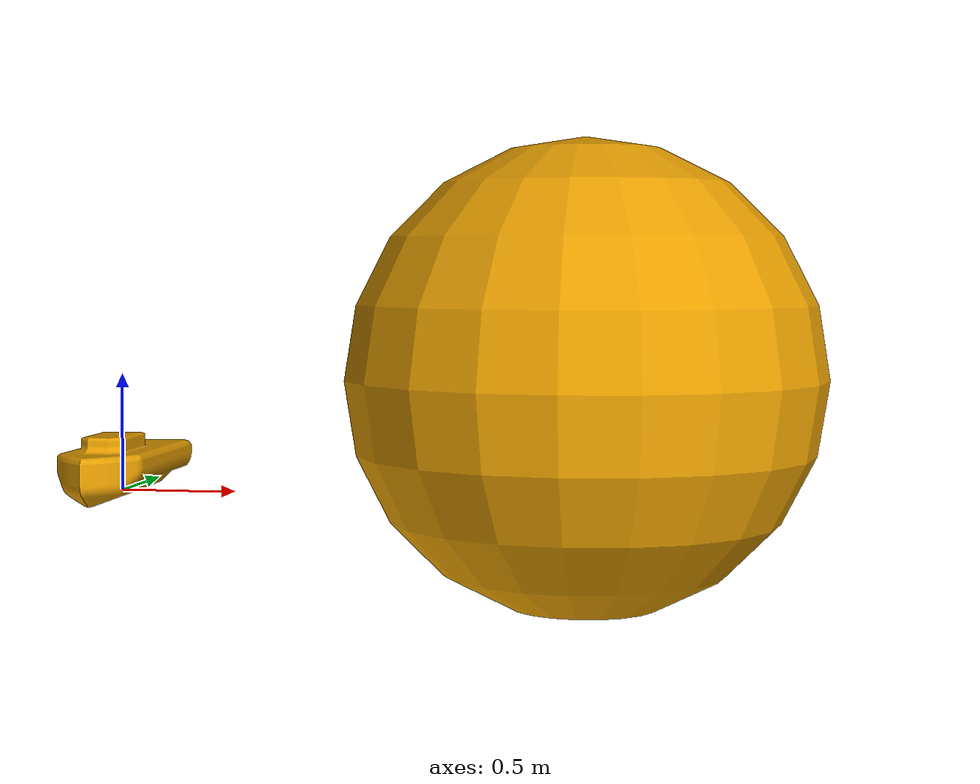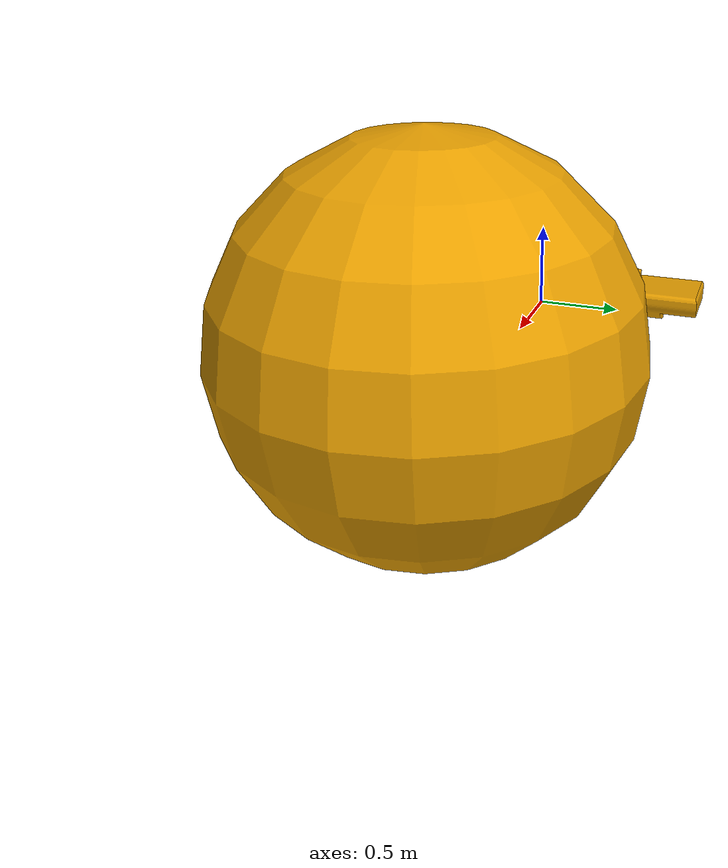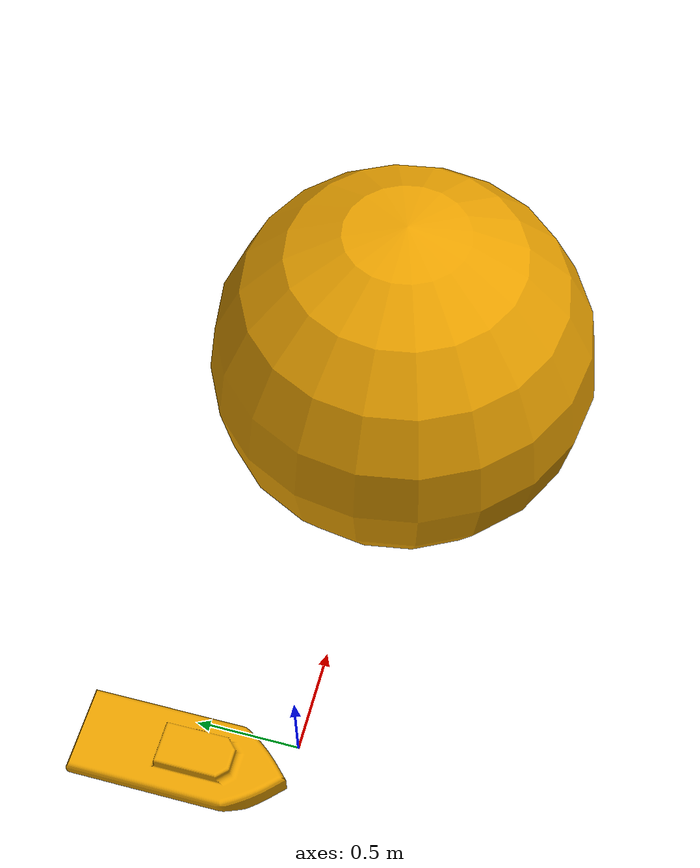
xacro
<?xml version='1.0'?>

<robot name="mycat" xmlns:xacro="http://www.ros.org/wiki/xacro">

  <link name='chassis'>
    <pose>0 0 0.1 0 0 0</pose>
    <visual name='chassis_visual'>
      <origin xyz="0 0 -0.1" rpy=" 0 0 0"/>
      <geometry>
        <mesh filename="package://garbage_boat/meshes/RobotBatPOrsjekt_v0.stl" scale="0.001 0.001 0.001"/>
      </geometry>
    </visual>

    <visual name='caster_visual'>
  <origin xyz="2 0 0.5" rpy=" 0 0 0"/>
  <geometry>
    <sphere radius="1.0"/>
  </geometry>
</visual>

</link>
</robot>
